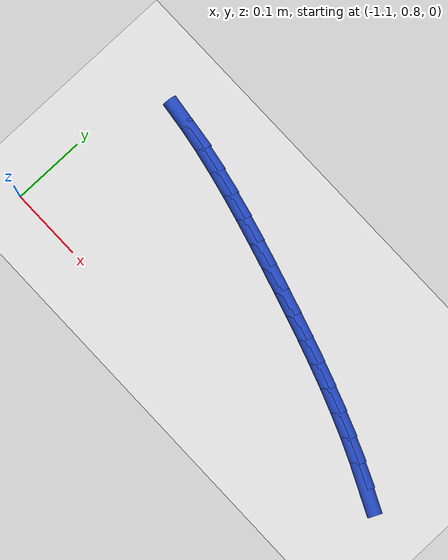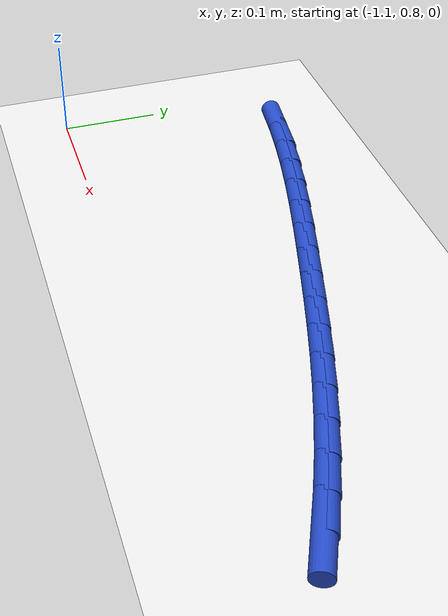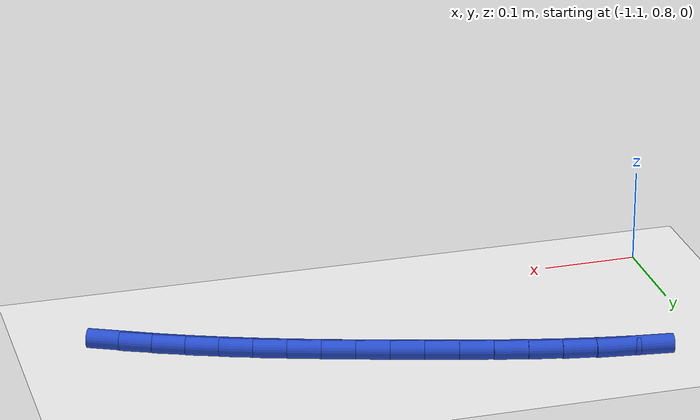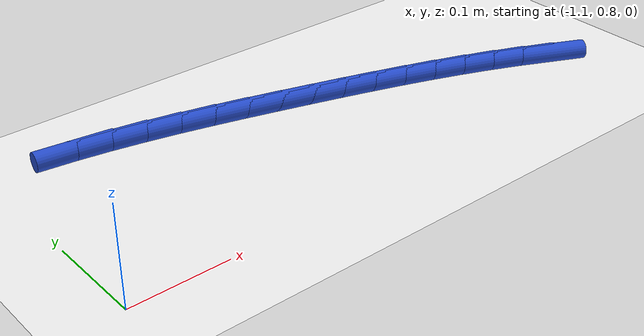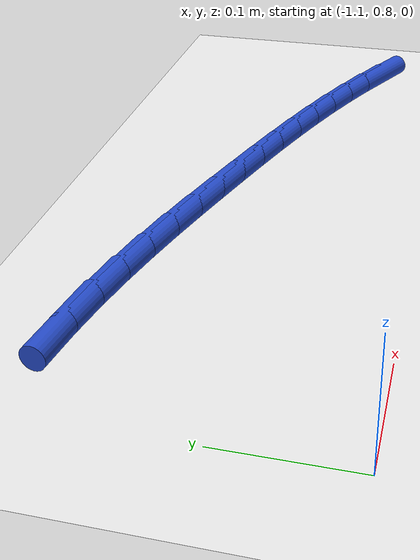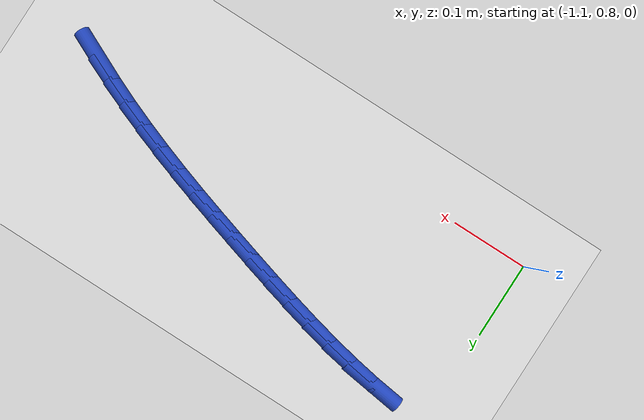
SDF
<sdf version="1.6">
 <world name="default">
  <model name="ground_plane">
   <static>1</static>
   <link name="link">
    <collision name="collision">
     <geometry><plane><normal>0 0 1</normal><size>100 100</size></plane></geometry>
     <surface><friction><ode><mu>100</mu><mu2>50</mu2></ode></friction></surface>
    </collision>
    <visual name="visual">
     <cast_shadows>0</cast_shadows>
     <geometry><plane><normal>0 0 1</normal><size>100 100</size></plane></geometry>
     <material>
      <script><uri>file://media/materials/scripts/gazebo.material</uri><name>Gazebo/WhiteGlow</name></script>
     </material>
    </visual>
   </link>
  </model>
  <model name="line">
   <link name="link_31">
    <pose>-0.5253329366530195 0.869082031222541 0.01 0 1.57 -0.43936023849952954</pose>
    <collision name="collision">
     <geometry><cylinder><radius>0.01</radius><length>0.08</length></cylinder></geometry>
    </collision>
    <visual name="visual">
     <material>
      <script><name>Gazebo/Blue</name><uri>file://media/materials/scripts/gazebo.material</uri></script>
     </material>
     <geometry><cylinder><radius>0.01</radius><length>0.08</length></cylinder></geometry>
    </visual>
   </link>
   <link name="link_32">
    <pose>-0.5561513375172285 0.8835666552174195 0.01 0 1.57 -0.4063447480765154</pose>
    <collision name="collision">
     <geometry><cylinder><radius>0.01</radius><length>0.08</length></cylinder></geometry>
    </collision>
    <visual name="visual">
     <material>
      <script><name>Gazebo/Blue</name><uri>file://media/materials/scripts/gazebo.material</uri></script>
     </material>
     <geometry><cylinder><radius>0.01</radius><length>0.08</length></cylinder></geometry>
    </visual>
   </link>
   <link name="link_33">
    <pose>-0.5874702135108187 0.8970429274579074 0.01 0 1.57 -0.3771120335657032</pose>
    <collision name="collision">
     <geometry><cylinder><radius>0.01</radius><length>0.08</length></cylinder></geometry>
    </collision>
    <visual name="visual">
     <material>
      <script><name>Gazebo/Blue</name><uri>file://media/materials/scripts/gazebo.material</uri></script>
     </material>
     <geometry><cylinder><radius>0.01</radius><length>0.08</length></cylinder></geometry>
    </visual>
   </link>
   <link name="link_34">
    <pose>-0.6192419799369085 0.9096267037942112 0.01 0 1.57 -0.35168794315972185</pose>
    <collision name="collision">
     <geometry><cylinder><radius>0.01</radius><length>0.08</length></cylinder></geometry>
    </collision>
    <visual name="visual">
     <material>
      <script><name>Gazebo/Blue</name><uri>file://media/materials/scripts/gazebo.material</uri></script>
     </material>
     <geometry><cylinder><radius>0.01</radius><length>0.08</length></cylinder></geometry>
    </visual>
   </link>
   <link name="link_35">
    <pose>-0.6514190520986154 0.9214338400765382 0.01 0 1.57 -0.3300653692220338</pose>
    <collision name="collision">
     <geometry><cylinder><radius>0.01</radius><length>0.08</length></cylinder></geometry>
    </collision>
    <visual name="visual">
     <material>
      <script><name>Gazebo/Blue</name><uri>file://media/materials/scripts/gazebo.material</uri></script>
     </material>
     <geometry><cylinder><radius>0.01</radius><length>0.08</length></cylinder></geometry>
    </visual>
   </link>
   <link name="link_36">
    <pose>-0.6839538452990572 0.9325801921550945 0.01 0 1.57 -0.31221543487642933</pose>
    <collision name="collision">
     <geometry><cylinder><radius>0.01</radius><length>0.08</length></cylinder></geometry>
    </collision>
    <visual name="visual">
     <material>
      <script><name>Gazebo/Blue</name><uri>file://media/materials/scripts/gazebo.material</uri></script>
     </material>
     <geometry><cylinder><radius>0.01</radius><length>0.08</length></cylinder></geometry>
    </visual>
   </link>
   <link name="link_37">
    <pose>-0.7167987748413518 0.943181615880087 0.01 0 1.57 -0.2980969697529193</pose>
    <collision name="collision">
     <geometry><cylinder><radius>0.01</radius><length>0.08</length></cylinder></geometry>
    </collision>
    <visual name="visual">
     <material>
      <script><name>Gazebo/Blue</name><uri>file://media/materials/scripts/gazebo.material</uri></script>
     </material>
     <geometry><cylinder><radius>0.01</radius><length>0.08</length></cylinder></geometry>
    </visual>
   </link>
   <link name="link_38">
    <pose>-0.7499062560286164 0.9533539671017218 0.01 0 1.57 -0.28766411263076835</pose>
    <collision name="collision">
     <geometry><cylinder><radius>0.01</radius><length>0.08</length></cylinder></geometry>
    </collision>
    <visual name="visual">
     <material>
      <script><name>Gazebo/Blue</name><uri>file://media/materials/scripts/gazebo.material</uri></script>
     </material>
     <geometry><cylinder><radius>0.01</radius><length>0.08</length></cylinder></geometry>
    </visual>
   </link>
   <link name="link_39">
    <pose>-0.7832287041639696 0.963213101670206 0.01 0 1.57 -0.28083087801892254</pose>
    <collision name="collision">
     <geometry><cylinder><radius>0.01</radius><length>0.08</length></cylinder></geometry>
    </collision>
    <visual name="visual">
     <material>
      <script><name>Gazebo/Blue</name><uri>file://media/materials/scripts/gazebo.material</uri></script>
     </material>
     <geometry><cylinder><radius>0.01</radius><length>0.08</length></cylinder></geometry>
    </visual>
   </link>
   <link name="link_40">
    <pose>-0.8167186772635532 0.9728734224620671 0.01 0 1.57 -0.27450820406204046</pose>
    <collision name="collision">
     <geometry><cylinder><radius>0.01</radius><length>0.08</length></cylinder></geometry>
    </collision>
    <visual name="visual">
     <material>
      <script><name>Gazebo/Blue</name><uri>file://media/materials/scripts/gazebo.material</uri></script>
     </material>
     <geometry><cylinder><radius>0.01</radius><length>0.08</length></cylinder></geometry>
    </visual>
   </link>
   <link name="link_41">
    <pose>-0.8503393158635872 0.9823415907989572 0.01 0 1.57 -0.26357270714695774</pose>
    <collision name="collision">
     <geometry><cylinder><radius>0.01</radius><length>0.08</length></cylinder></geometry>
    </collision>
    <visual name="visual">
     <material>
      <script><name>Gazebo/Blue</name><uri>file://media/materials/scripts/gazebo.material</uri></script>
     </material>
     <geometry><cylinder><radius>0.01</radius><length>0.08</length></cylinder></geometry>
    </visual>
   </link>
   <link name="link_42">
    <pose>-0.884071444034229 0.991444230409597 0.01 0 1.57 -0.24748363059681194</pose>
    <collision name="collision">
     <geometry><cylinder><radius>0.01</radius><length>0.08</length></cylinder></geometry>
    </collision>
    <visual name="visual">
     <material>
      <script><name>Gazebo/Blue</name><uri>file://media/materials/scripts/gazebo.material</uri></script>
     </material>
     <geometry><cylinder><radius>0.01</radius><length>0.08</length></cylinder></geometry>
    </visual>
   </link>
   <link name="link_43">
    <pose>-0.917897567203002 0.999990846977508 0.01 0 1.57 -0.22613830442118382</pose>
    <collision name="collision">
     <geometry><cylinder><radius>0.01</radius><length>0.08</length></cylinder></geometry>
    </collision>
    <visual name="visual">
     <material>
      <script><name>Gazebo/Blue</name><uri>file://media/materials/scripts/gazebo.material</uri></script>
     </material>
     <geometry><cylinder><radius>0.01</radius><length>0.08</length></cylinder></geometry>
    </visual>
   </link>
   <link name="link_44">
    <pose>-0.9518001907974311 1.0077909461862145 0.01 0 1.57 -0.19939819341375972</pose>
    <collision name="collision">
     <geometry><cylinder><radius>0.01</radius><length>0.08</length></cylinder></geometry>
    </collision>
    <visual name="visual">
     <material>
      <script><name>Gazebo/Blue</name><uri>file://media/materials/scripts/gazebo.material</uri></script>
     </material>
     <geometry><cylinder><radius>0.01</radius><length>0.08</length></cylinder></geometry>
    </visual>
   </link>
   <link name="link_45">
    <pose>-0.985761820245039 1.0146540337192385 0.01 0 1.57 -0.16710500320656313</pose>
    <collision name="collision">
     <geometry><cylinder><radius>0.01</radius><length>0.08</length></cylinder></geometry>
    </collision>
    <visual name="visual">
     <material>
      <script><name>Gazebo/Blue</name><uri>file://media/materials/scripts/gazebo.material</uri></script>
     </material>
     <geometry><cylinder><radius>0.01</radius><length>0.08</length></cylinder></geometry>
    </visual>
   </link>
   <link name="link_46">
    <pose>-1.0197649609733506 1.0203896152601035 0.01 0 1.57 -0.12910306802618346</pose>
    <collision name="collision">
     <geometry><cylinder><radius>0.01</radius><length>0.08</length></cylinder></geometry>
    </collision>
    <visual name="visual">
     <material>
      <script><name>Gazebo/Blue</name><uri>file://media/materials/scripts/gazebo.material</uri></script>
     </material>
     <geometry><cylinder><radius>0.01</radius><length>0.08</length></cylinder></geometry>
    </visual>
   </link>
  </model>
 </world>
</sdf>
